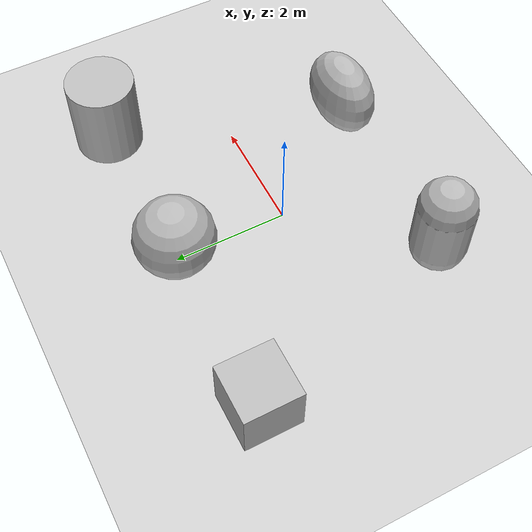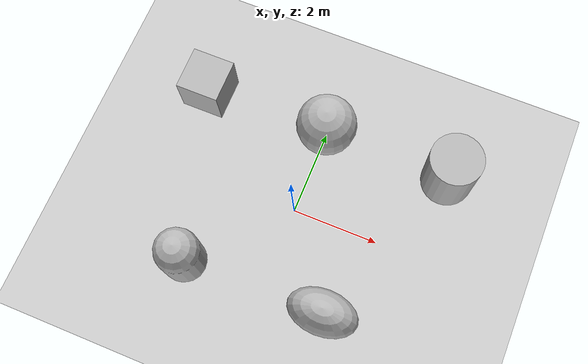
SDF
<?xml version="1.0" ?>
<sdf version="1.9">
  <world name="mobile_robot_lab_world">

    <physics name="default_physics" type="ode">
      <max_step_size>0.001</max_step_size>
      <real_time_factor>1.0</real_time_factor>
      <real_time_update_rate>1000</real_time_update_rate>
    </physics>

    <scene>
      <ambient>0.4 0.4 0.4 1</ambient>
      <background>0.7 0.8 0.9 1</background>
      <shadows>true</shadows>
    </scene>

    <light name="sun" type="directional">
      <cast_shadows>true</cast_shadows>
      <pose>0 0 10 0 0 0</pose>
      <diffuse>0.9 0.9 0.9 1</diffuse>
      <specular>0.2 0.2 0.2 1</specular>
      <direction>-0.4 0.3 -1.0</direction>
    </light>

    <model name="ground_plane">
      <static>true</static>
      <link name="link">
        <collision name="collision">
          <geometry><plane><normal>0 0 1</normal><size>20 20</size></plane></geometry>
        </collision>
        <visual name="visual">
          <geometry><plane><normal>0 0 1</normal><size>20 20</size></plane></geometry>
        </visual>
      </link>
    </model>

    <model name="box">
      <static>true</static>
      <pose>-3 2 0.5 0 0 0</pose>
      <link name="link">
        <collision name="collision"><geometry><box><size>1 1 1</size></box></geometry></collision>
        <visual name="visual"><geometry><box><size>1 1 1</size></box></geometry></visual>
      </link>
    </model>

    <model name="sphere">
      <static>true</static>
      <pose>0 2 0.7 0 0 0</pose>
      <link name="link">
        <collision name="collision"><geometry><sphere><radius>0.7</radius></sphere></geometry></collision>
        <visual name="visual"><geometry><sphere><radius>0.7</radius></sphere></geometry></visual>
      </link>
    </model>

    <model name="cylinder">
      <static>true</static>
      <pose>3 2 0.75 0 0 0</pose>
      <link name="link">
        <collision name="collision"><geometry><cylinder><radius>0.6</radius><length>1.5</length></cylinder></geometry></collision>
        <visual name="visual"><geometry><cylinder><radius>0.6</radius><length>1.5</length></cylinder></geometry></visual>
      </link>
    </model>

    <model name="capsule">
      <static>true</static>
      <pose>-1.8 -2 0.7 0 0 0</pose>
      <link name="link">
        <collision name="collision"><geometry><capsule><radius>0.5</radius><length>1.0</length></capsule></geometry></collision>
        <visual name="visual"><geometry><capsule><radius>0.5</radius><length>1.0</length></capsule></geometry></visual>
      </link>
    </model>

    <model name="ellipsoid">
      <static>true</static>
      <pose>1.5 -2 0.7 0 0 0</pose>
      <link name="link">
        <collision name="collision"><geometry><ellipsoid><radii>0.8 0.5 0.7</radii></ellipsoid></geometry></collision>
        <visual name="visual"><geometry><ellipsoid><radii>0.8 0.5 0.7</radii></ellipsoid></geometry></visual>
      </link>
    </model>

  </world>
</sdf>
